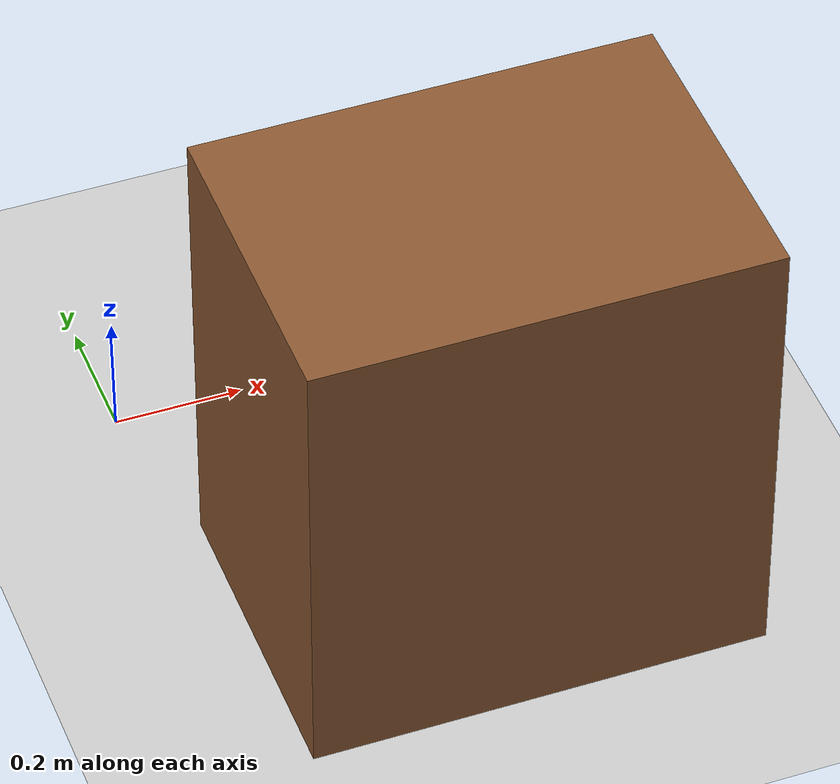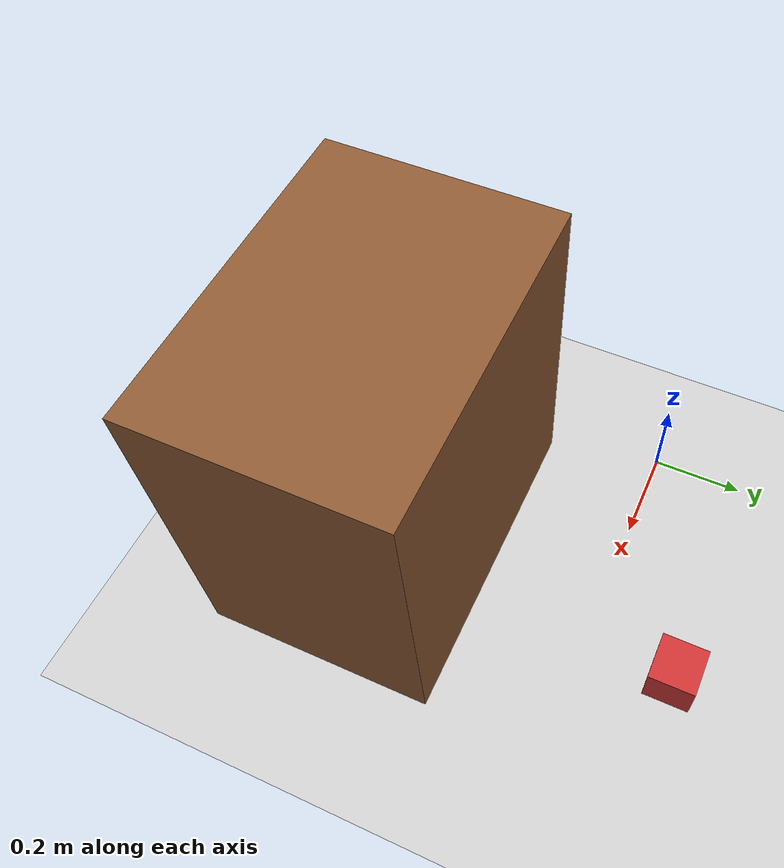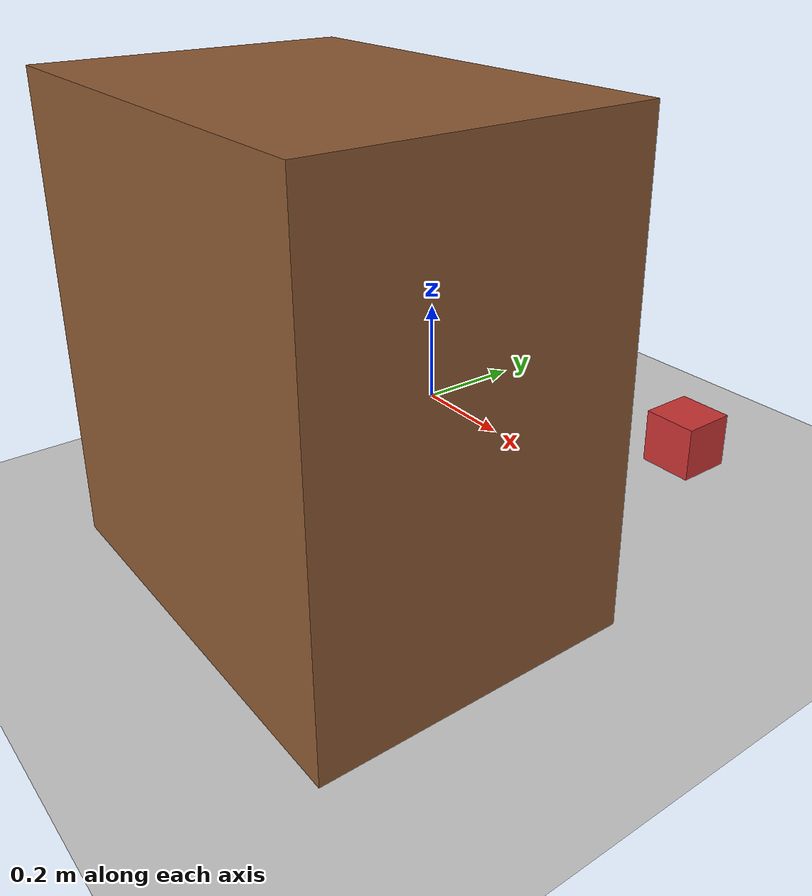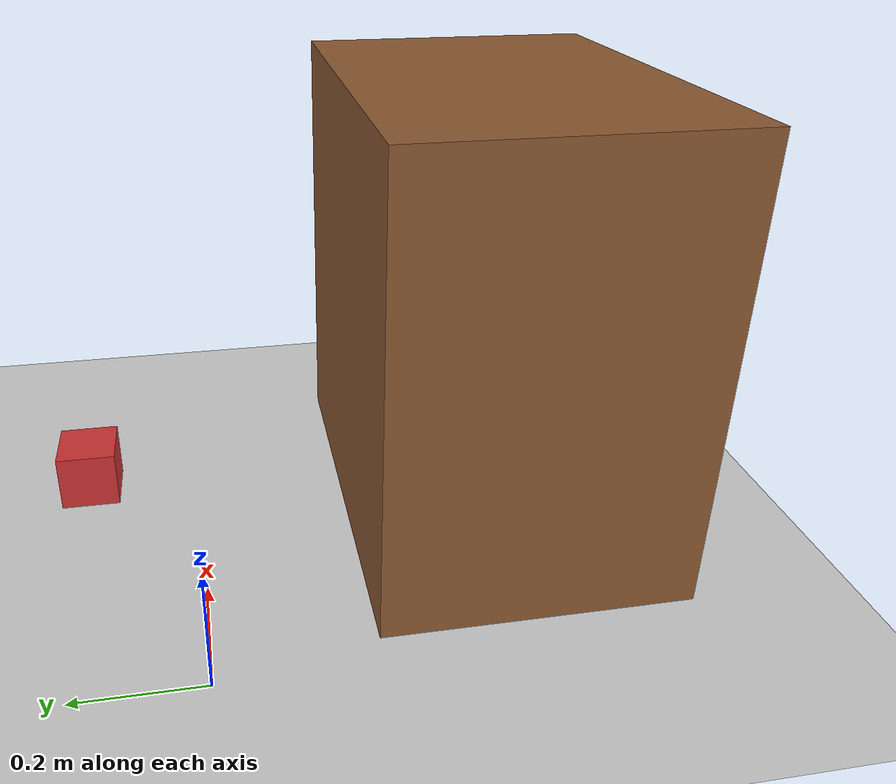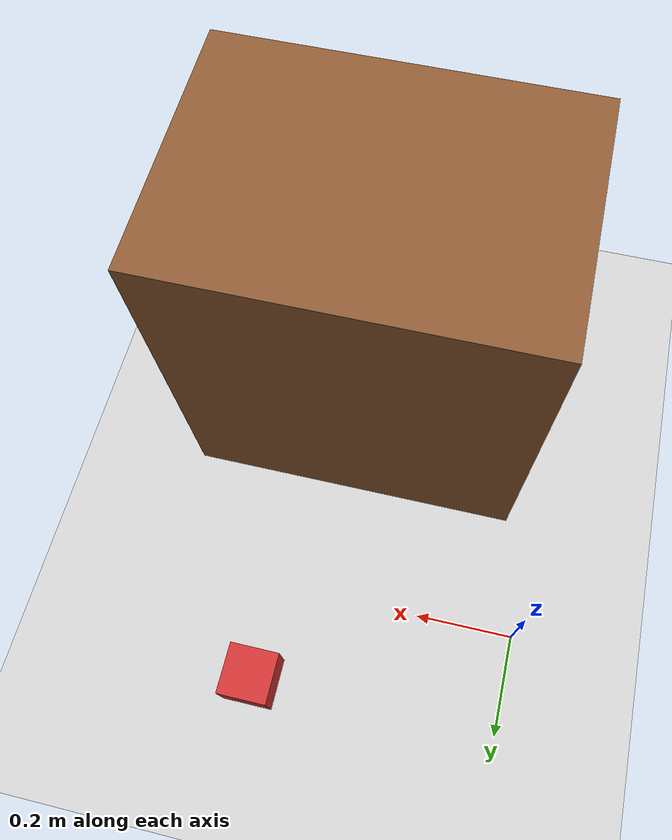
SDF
<?xml version="1.0" ?>
<sdf version="1.9">
  <world name="pick_place_cell_world">
    <gravity>0 0 -9.81</gravity>
    <light name="sun" type="directional">
      <pose>0 0 10 0 0 0</pose>
      <diffuse>0.8 0.8 0.8 1</diffuse>
      <specular>0.2 0.2 0.2 1</specular>
      <direction>-0.5 0.5 -1</direction>
    </light>

    <model name="ground_plane">
      <static>true</static>
      <link name="link">
        <collision name="collision">
          <geometry>
            <plane>
              <normal>0 0 1</normal>
              <size>10 10</size>
            </plane>
          </geometry>
        </collision>
        <visual name="visual">
          <geometry>
            <plane>
              <normal>0 0 1</normal>
              <size>10 10</size>
            </plane>
          </geometry>
        </visual>
      </link>
    </model>

    <!-- Work table: robot sağında, masa yüzeyi yerden 0.75m yüksekte -->
    <!-- pose x y z rx ry rz — merkez noktası kutunun ortası olduğu için z=0.375 (yükseklik/2) -->
    <model name="work_table">
      <static>true</static>
      <pose>0.4 -0.5 0.375 0 0 0</pose>
      <link name="table_link">
        <collision name="collision">
          <geometry>
            <box>
              <size>0.7 0.5 0.75</size>
            </box>
          </geometry>
        </collision>
        <visual name="visual">
          <geometry>
            <box>
              <size>0.7 0.5 0.75</size>
            </box>
          </geometry>
          <material>
            <diffuse>0.55 0.35 0.20 1</diffuse>
          </material>
        </visual>
      </link>
    </model>

    <!-- Kutu yerde, robot önünde, erişim mesafesinde -->
    <!-- UR5e tabanı 0,0,0'da; kutu 0.5m önde (x), 0.05m yukarıda (z = boyut/2) -->
    <model name="package_box">
      <pose>0.5 0.2 0.05 0 0 0</pose>
      <link name="box_link">
        <kinematic>true</kinematic>
        <inertial>
          <mass>0.5</mass>
          <inertia>
            <ixx>0.000833</ixx>
            <iyy>0.000833</iyy>
            <izz>0.000833</izz>
          </inertia>
        </inertial>
        <collision name="collision">
          <geometry>
            <box>
              <size>0.1 0.1 0.1</size>
            </box>
          </geometry>
        </collision>
        <visual name="visual">
          <geometry>
            <box>
              <size>0.1 0.1 0.1</size>
            </box>
          </geometry>
          <material>
            <diffuse>0.8 0.2 0.2 1</diffuse>
          </material>
        </visual>
      </link>
    </model>

  </world>
</sdf>
